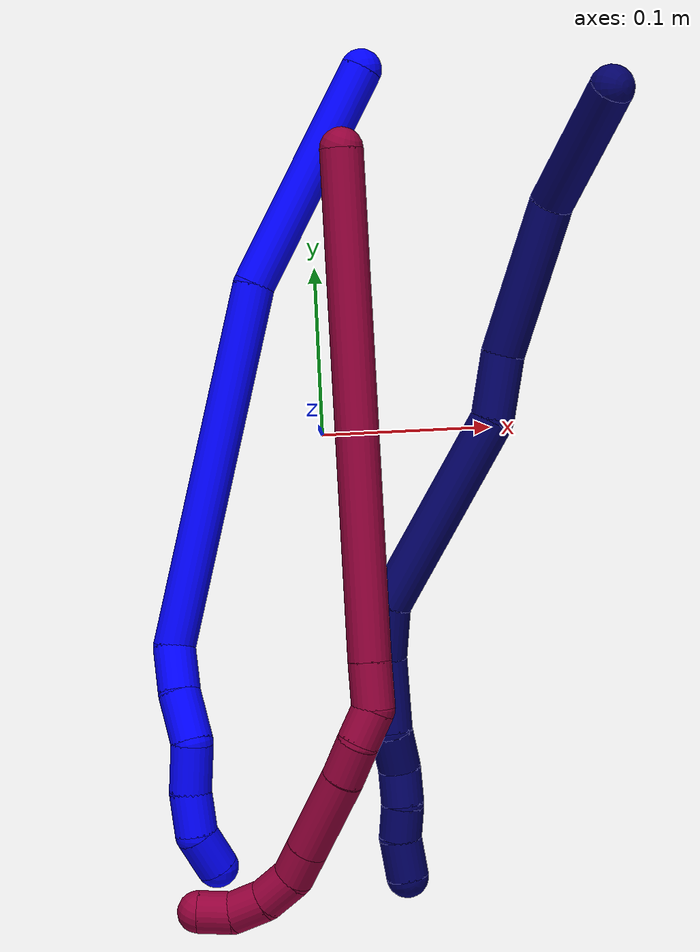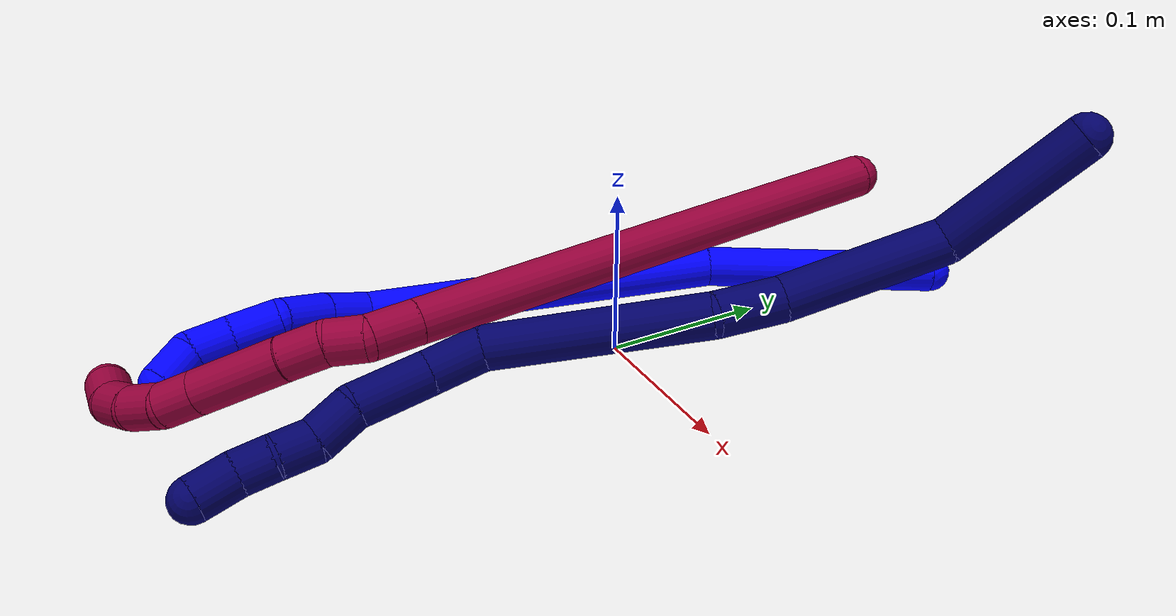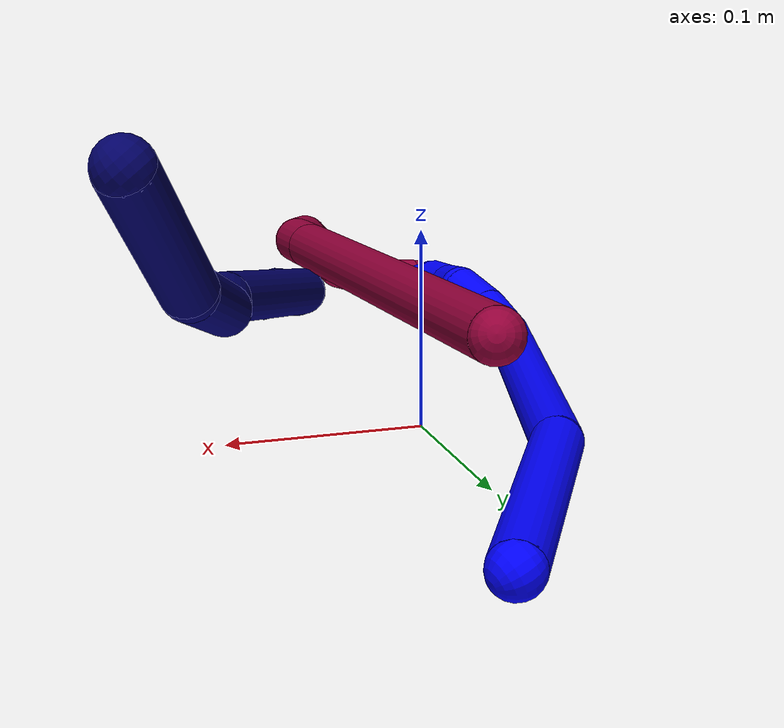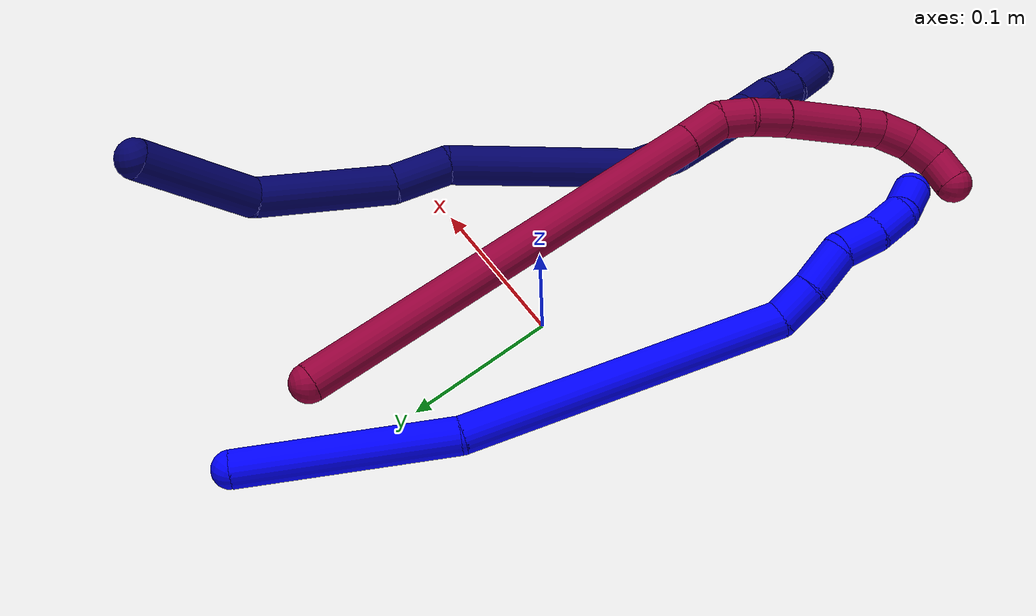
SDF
<sdf version="1.7">
 <world name="default">
  <model name="1">
   <static>0</static>
   <link name="1">
    <collision name="collision-cylinder-e_1_1_4">
     <pose>-0.031318 -0.049435 0.041776 0.869175 -0.450663 -0.212007</pose>
     <geometry><cylinder><radius>0.0125</radius><length>0.143803</length></cylinder></geometry>
     <surface>
      <friction><ode><mu>1.16</mu><mu2>1.16</mu2><slip1>0</slip1><slip2>0</slip2></ode></friction>
      <contact><ode><kp>1e+06</kp><kd>1</kd><max_vel>0</max_vel><min_depth>0.001</min_depth></ode></contact>
     </surface>
    </collision>
    <visual name="visual-cylinder-e_1_1_4">
     <pose>-0.031318 -0.049435 0.041776 0.869175 -0.450663 -0.212007</pose>
     <geometry><cylinder><radius>0.0125</radius><length>0.143803</length></cylinder></geometry>
     <material><ambient>0 0 1 1</ambient></material>
    </visual>
    <collision name="collision-cylinder-e_2_4_5">
     <pose>-0.109671 -0.188488 0.124646 1.14085 -0.445147 -0.288389</pose>
     <geometry><cylinder><radius>0.0125</radius><length>0.218472</length></cylinder></geometry>
     <surface>
      <friction><ode><mu>1.16</mu><mu2>1.16</mu2><slip1>0</slip1><slip2>0</slip2></ode></friction>
      <contact><ode><kp>1e+06</kp><kd>1</kd><max_vel>0</max_vel><min_depth>0.001</min_depth></ode></contact>
     </surface>
    </collision>
    <visual name="visual-cylinder-e_2_4_5">
     <pose>-0.109671 -0.188488 0.124646 1.14085 -0.445147 -0.288389</pose>
     <geometry><cylinder><radius>0.0125</radius><length>0.218472</length></cylinder></geometry>
     <material><ambient>0 0 1 1</ambient></material>
    </visual>
    <collision name="collision-cylinder-e_3_5_6">
     <pose>-0.157095 -0.29198 0.168436 1.37884 -0.027443 -0.022623</pose>
     <geometry><cylinder><radius>0.0125</radius><length>0.028279</length></cylinder></geometry>
     <surface>
      <friction><ode><mu>1.16</mu><mu2>1.16</mu2><slip1>0</slip1><slip2>0</slip2></ode></friction>
      <contact><ode><kp>1e+06</kp><kd>1</kd><max_vel>0</max_vel><min_depth>0.001</min_depth></ode></contact>
     </surface>
    </collision>
    <visual name="visual-cylinder-e_3_5_6">
     <pose>-0.157095 -0.29198 0.168436 1.37884 -0.027443 -0.022623</pose>
     <geometry><cylinder><radius>0.0125</radius><length>0.028279</length></cylinder></geometry>
     <material><ambient>0 0 1 1</ambient></material>
    </visual>
    <collision name="collision-cylinder-e_4_6_7">
     <pose>-0.157898 -0.321105 0.171953 1.5171 -0.027157 -0.025737</pose>
     <geometry><cylinder><radius>0.0125</radius><length>0.030557</length></cylinder></geometry>
     <surface>
      <friction><ode><mu>1.16</mu><mu2>1.16</mu2><slip1>0</slip1><slip2>0</slip2></ode></friction>
      <contact><ode><kp>1e+06</kp><kd>1</kd><max_vel>0</max_vel><min_depth>0.001</min_depth></ode></contact>
     </surface>
    </collision>
    <visual name="visual-cylinder-e_4_6_7">
     <pose>-0.157898 -0.321105 0.171953 1.5171 -0.027157 -0.025737</pose>
     <geometry><cylinder><radius>0.0125</radius><length>0.030557</length></cylinder></geometry>
     <material><ambient>0 0 1 1</ambient></material>
    </visual>
    <collision name="collision-cylinder-e_5_7_8">
     <pose>-0.165688 -0.348756 0.175247 1.3738 -0.528014 -0.436334</pose>
     <geometry><cylinder><radius>0.0125</radius><length>0.029277</length></cylinder></geometry>
     <surface>
      <friction><ode><mu>1.16</mu><mu2>1.16</mu2><slip1>0</slip1><slip2>0</slip2></ode></friction>
      <contact><ode><kp>1e+06</kp><kd>1</kd><max_vel>0</max_vel><min_depth>0.001</min_depth></ode></contact>
     </surface>
    </collision>
    <visual name="visual-cylinder-e_5_7_8">
     <pose>-0.165688 -0.348756 0.175247 1.3738 -0.528014 -0.436334</pose>
     <geometry><cylinder><radius>0.0125</radius><length>0.029277</length></cylinder></geometry>
     <material><ambient>0 0 1 1</ambient></material>
    </visual>
    <collision name="collision-cylinder-e_6_8_9">
     <pose>-0.177675 -0.372837 0.178239 1.52658 -0.37575 -0.35985</pose>
     <geometry><cylinder><radius>0.0125</radius><length>0.025137</length></cylinder></geometry>
     <surface>
      <friction><ode><mu>1.16</mu><mu2>1.16</mu2><slip1>0</slip1><slip2>0</slip2></ode></friction>
      <contact><ode><kp>1e+06</kp><kd>1</kd><max_vel>0</max_vel><min_depth>0.001</min_depth></ode></contact>
     </surface>
    </collision>
    <visual name="visual-cylinder-e_6_8_9">
     <pose>-0.177675 -0.372837 0.178239 1.52658 -0.37575 -0.35985</pose>
     <geometry><cylinder><radius>0.0125</radius><length>0.025137</length></cylinder></geometry>
     <material><ambient>0 0 1 1</ambient></material>
    </visual>
    <collision name="collision-cylinder-e_7_9_2">
     <pose>-0.187763 -0.394217 0.173686 2.05242 -0.463854 -0.743599</pose>
     <geometry><cylinder><radius>0.0125</radius><length>0.024476</length></cylinder></geometry>
     <surface>
      <friction><ode><mu>1.16</mu><mu2>1.16</mu2><slip1>0</slip1><slip2>0</slip2></ode></friction>
      <contact><ode><kp>1e+06</kp><kd>1</kd><max_vel>0</max_vel><min_depth>0.001</min_depth></ode></contact>
     </surface>
    </collision>
    <visual name="visual-cylinder-e_7_9_2">
     <pose>-0.187763 -0.394217 0.173686 2.05242 -0.463854 -0.743599</pose>
     <geometry><cylinder><radius>0.0125</radius><length>0.024476</length></cylinder></geometry>
     <material><ambient>0 0 1 1</ambient></material>
    </visual>
    <collision name="collision-sphere-2">
     <pose>-0.193238 -0.403917 0.168616 0 -0 0</pose>
     <geometry><sphere><radius>0.0125</radius></sphere></geometry>
     <surface>
      <friction><ode><mu>1.16</mu><mu2>1.16</mu2><slip1>0</slip1><slip2>0</slip2></ode></friction>
      <contact><ode><kp>1e+06</kp><kd>1</kd><max_vel>0</max_vel><min_depth>0.001</min_depth></ode></contact>
     </surface>
    </collision>
    <visual name="visual-sphere-2">
     <pose>-0.193238 -0.403917 0.168616 0 -0 0</pose>
     <geometry><sphere><radius>0.0125</radius></sphere></geometry>
     <material><ambient>0 0 1 1</ambient></material>
    </visual>
    <collision name="collision-sphere-9">
     <pose>-0.182287 -0.384517 0.178756 0 -0 0</pose>
     <geometry><sphere><radius>0.0125</radius></sphere></geometry>
     <surface>
      <friction><ode><mu>1.16</mu><mu2>1.16</mu2><slip1>0</slip1><slip2>0</slip2></ode></friction>
      <contact><ode><kp>1e+06</kp><kd>1</kd><max_vel>0</max_vel><min_depth>0.001</min_depth></ode></contact>
     </surface>
    </collision>
    <visual name="visual-sphere-9">
     <pose>-0.182287 -0.384517 0.178756 0 -0 0</pose>
     <geometry><sphere><radius>0.0125</radius></sphere></geometry>
     <material><ambient>0 0 1 1</ambient></material>
    </visual>
    <collision name="collision-sphere-4">
     <pose>-0.062635 -0.09887 0.083551 0 -0 0</pose>
     <geometry><sphere><radius>0.0125</radius></sphere></geometry>
     <surface>
      <friction><ode><mu>1.16</mu><mu2>1.16</mu2><slip1>0</slip1><slip2>0</slip2></ode></friction>
      <contact><ode><kp>1e+06</kp><kd>1</kd><max_vel>0</max_vel><min_depth>0.001</min_depth></ode></contact>
     </surface>
    </collision>
    <visual name="visual-sphere-4">
     <pose>-0.062635 -0.09887 0.083551 0 -0 0</pose>
     <geometry><sphere><radius>0.0125</radius></sphere></geometry>
     <material><ambient>0 0 1 1</ambient></material>
    </visual>
    <collision name="collision-sphere-1">
     <geometry><sphere><radius>0.0125</radius></sphere></geometry>
     <surface>
      <friction><ode><mu>1.16</mu><mu2>1.16</mu2><slip1>0</slip1><slip2>0</slip2></ode></friction>
      <contact><ode><kp>1e+06</kp><kd>1</kd><max_vel>0</max_vel><min_depth>0.001</min_depth></ode></contact>
     </surface>
    </collision>
    <visual name="visual-sphere-1">
     <geometry><sphere><radius>0.0125</radius></sphere></geometry>
     <material><ambient>0 0 1 1</ambient></material>
    </visual>
    <collision name="collision-sphere-8">
     <pose>-0.173063 -0.361157 0.177722 0 -0 0</pose>
     <geometry><sphere><radius>0.0125</radius></sphere></geometry>
     <surface>
      <friction><ode><mu>1.16</mu><mu2>1.16</mu2><slip1>0</slip1><slip2>0</slip2></ode></friction>
      <contact><ode><kp>1e+06</kp><kd>1</kd><max_vel>0</max_vel><min_depth>0.001</min_depth></ode></contact>
     </surface>
    </collision>
    <visual name="visual-sphere-8">
     <pose>-0.173063 -0.361157 0.177722 0 -0 0</pose>
     <geometry><sphere><radius>0.0125</radius></sphere></geometry>
     <material><ambient>0 0 1 1</ambient></material>
    </visual>
    <collision name="collision-sphere-5">
     <pose>-0.156707 -0.278105 0.16574 0 -0 0</pose>
     <geometry><sphere><radius>0.0125</radius></sphere></geometry>
     <surface>
      <friction><ode><mu>1.16</mu><mu2>1.16</mu2><slip1>0</slip1><slip2>0</slip2></ode></friction>
      <contact><ode><kp>1e+06</kp><kd>1</kd><max_vel>0</max_vel><min_depth>0.001</min_depth></ode></contact>
     </surface>
    </collision>
    <visual name="visual-sphere-5">
     <pose>-0.156707 -0.278105 0.16574 0 -0 0</pose>
     <geometry><sphere><radius>0.0125</radius></sphere></geometry>
     <material><ambient>0 0 1 1</ambient></material>
    </visual>
    <collision name="collision-sphere-6">
     <pose>-0.157483 -0.305854 0.171133 0 -0 0</pose>
     <geometry><sphere><radius>0.0125</radius></sphere></geometry>
     <surface>
      <friction><ode><mu>1.16</mu><mu2>1.16</mu2><slip1>0</slip1><slip2>0</slip2></ode></friction>
      <contact><ode><kp>1e+06</kp><kd>1</kd><max_vel>0</max_vel><min_depth>0.001</min_depth></ode></contact>
     </surface>
    </collision>
    <visual name="visual-sphere-6">
     <pose>-0.157483 -0.305854 0.171133 0 -0 0</pose>
     <geometry><sphere><radius>0.0125</radius></sphere></geometry>
     <material><ambient>0 0 1 1</ambient></material>
    </visual>
    <collision name="collision-sphere-7">
     <pose>-0.158312 -0.336356 0.172773 0 -0 0</pose>
     <geometry><sphere><radius>0.0125</radius></sphere></geometry>
     <surface>
      <friction><ode><mu>1.16</mu><mu2>1.16</mu2><slip1>0</slip1><slip2>0</slip2></ode></friction>
      <contact><ode><kp>1e+06</kp><kd>1</kd><max_vel>0</max_vel><min_depth>0.001</min_depth></ode></contact>
     </surface>
    </collision>
    <visual name="visual-sphere-7">
     <pose>-0.158312 -0.336356 0.172773 0 -0 0</pose>
     <geometry><sphere><radius>0.0125</radius></sphere></geometry>
     <material><ambient>0 0 1 1</ambient></material>
    </visual>
    <inertial>
     <pose>-0.103287 -0.191177 0.114238 0 -0 0</pose>
     <mass>0.5</mass>
     <inertia>
      <ixx>0.000703</ixx>
      <ixy>0</ixy>
      <ixz>0</ixz>
      <iyy>0.00032</iyy>
      <iyz>0</iyz>
      <izz>0.001412</izz>
     </inertia>
    </inertial>
   </link>
   <pose>0.03379 0.215487 0.0123 -0.536003 -1.06983 0.766493</pose>
  </model>
  <model name="7">
   <static>0</static>
   <link name="7">
    <collision name="collision-cylinder-e_1_1_4">
     <pose>1.9e-05 -0.031908 -0.027168 2.27614 0.000462 0.001</pose>
     <geometry><cylinder><radius>0.0125</radius><length>0.083814</length></cylinder></geometry>
     <surface>
      <friction><ode><mu>1.16</mu><mu2>1.16</mu2><slip1>0</slip1><slip2>0</slip2></ode></friction>
      <contact><ode><kp>1e+06</kp><kd>1</kd><max_vel>0</max_vel><min_depth>0.001</min_depth></ode></contact>
     </surface>
    </collision>
    <visual name="visual-cylinder-e_1_1_4">
     <pose>1.9e-05 -0.031908 -0.027168 2.27614 0.000462 0.001</pose>
     <geometry><cylinder><radius>0.0125</radius><length>0.083814</length></cylinder></geometry>
     <material><ambient>0.003922 0 0.403922 1</ambient></material>
    </visual>
    <collision name="collision-cylinder-e_2_4_5">
     <pose>-0.011054 -0.105542 -0.066819 1.86147 -0.249386 -0.33353</pose>
     <geometry><cylinder><radius>0.0125</radius><length>0.089889</length></cylinder></geometry>
     <surface>
      <friction><ode><mu>1.16</mu><mu2>1.16</mu2><slip1>0</slip1><slip2>0</slip2></ode></friction>
      <contact><ode><kp>1e+06</kp><kd>1</kd><max_vel>0</max_vel><min_depth>0.001</min_depth></ode></contact>
     </surface>
    </collision>
    <visual name="visual-cylinder-e_2_4_5">
     <pose>-0.011054 -0.105542 -0.066819 1.86147 -0.249386 -0.33353</pose>
     <geometry><cylinder><radius>0.0125</radius><length>0.089889</length></cylinder></geometry>
     <material><ambient>0.003922 0 0.403922 1</ambient></material>
    </visual>
    <collision name="collision-cylinder-e_3_5_6">
     <pose>-0.027632 -0.165244 -0.079534 1.58373 -0.296171 -0.299968</pose>
     <geometry><cylinder><radius>0.0125</radius><length>0.037589</length></cylinder></geometry>
     <surface>
      <friction><ode><mu>1.16</mu><mu2>1.16</mu2><slip1>0</slip1><slip2>0</slip2></ode></friction>
      <contact><ode><kp>1e+06</kp><kd>1</kd><max_vel>0</max_vel><min_depth>0.001</min_depth></ode></contact>
     </surface>
    </collision>
    <visual name="visual-cylinder-e_3_5_6">
     <pose>-0.027632 -0.165244 -0.079534 1.58373 -0.296171 -0.299968</pose>
     <geometry><cylinder><radius>0.0125</radius><length>0.037589</length></cylinder></geometry>
     <material><ambient>0.003922 0 0.403922 1</ambient></material>
    </visual>
    <collision name="collision-cylinder-e_4_6_7">
     <pose>-0.06069 -0.234395 -0.098921 1.92894 -0.467324 -0.661239</pose>
     <geometry><cylinder><radius>0.0125</radius><length>0.122411</length></cylinder></geometry>
     <surface>
      <friction><ode><mu>1.16</mu><mu2>1.16</mu2><slip1>0</slip1><slip2>0</slip2></ode></friction>
      <contact><ode><kp>1e+06</kp><kd>1</kd><max_vel>0</max_vel><min_depth>0.001</min_depth></ode></contact>
     </surface>
    </collision>
    <visual name="visual-cylinder-e_4_6_7">
     <pose>-0.06069 -0.234395 -0.098921 1.92894 -0.467324 -0.661239</pose>
     <geometry><cylinder><radius>0.0125</radius><length>0.122411</length></cylinder></geometry>
     <material><ambient>0.003922 0 0.403922 1</ambient></material>
    </visual>
    <collision name="collision-cylinder-e_5_7_8">
     <pose>-0.090064 -0.301206 -0.119729 1.67616 -0.114049 -0.126714</pose>
     <geometry><cylinder><radius>0.0125</radius><length>0.031652</length></cylinder></geometry>
     <surface>
      <friction><ode><mu>1.16</mu><mu2>1.16</mu2><slip1>0</slip1><slip2>0</slip2></ode></friction>
      <contact><ode><kp>1e+06</kp><kd>1</kd><max_vel>0</max_vel><min_depth>0.001</min_depth></ode></contact>
     </surface>
    </collision>
    <visual name="visual-cylinder-e_5_7_8">
     <pose>-0.090064 -0.301206 -0.119729 1.67616 -0.114049 -0.126714</pose>
     <geometry><cylinder><radius>0.0125</radius><length>0.031652</length></cylinder></geometry>
     <material><ambient>0.003922 0 0.403922 1</ambient></material>
    </visual>
    <collision name="collision-cylinder-e_6_8_9">
     <pose>-0.093434 -0.338238 -0.119595 1.48745 -0.072914 -0.067082</pose>
     <geometry><cylinder><radius>0.0125</radius><length>0.043056</length></cylinder></geometry>
     <surface>
      <friction><ode><mu>1.16</mu><mu2>1.16</mu2><slip1>0</slip1><slip2>0</slip2></ode></friction>
      <contact><ode><kp>1e+06</kp><kd>1</kd><max_vel>0</max_vel><min_depth>0.001</min_depth></ode></contact>
     </surface>
    </collision>
    <visual name="visual-cylinder-e_6_8_9">
     <pose>-0.093434 -0.338238 -0.119595 1.48745 -0.072914 -0.067082</pose>
     <geometry><cylinder><radius>0.0125</radius><length>0.043056</length></cylinder></geometry>
     <material><ambient>0.003922 0 0.403922 1</ambient></material>
    </visual>
    <collision name="collision-cylinder-e_7_9_10">
     <pose>-0.092403 -0.372048 -0.118754 1.64687 0.2058 0.221954</pose>
     <geometry><cylinder><radius>0.0125</radius><length>0.025436</length></cylinder></geometry>
     <surface>
      <friction><ode><mu>1.16</mu><mu2>1.16</mu2><slip1>0</slip1><slip2>0</slip2></ode></friction>
      <contact><ode><kp>1e+06</kp><kd>1</kd><max_vel>0</max_vel><min_depth>0.001</min_depth></ode></contact>
     </surface>
    </collision>
    <visual name="visual-cylinder-e_7_9_10">
     <pose>-0.092403 -0.372048 -0.118754 1.64687 0.2058 0.221954</pose>
     <geometry><cylinder><radius>0.0125</radius><length>0.025436</length></cylinder></geometry>
     <material><ambient>0.003922 0 0.403922 1</ambient></material>
    </visual>
    <collision name="collision-cylinder-e_8_10_11">
     <pose>-0.090835 -0.395095 -0.118267 1.43688 -0.095764 -0.083742</pose>
     <geometry><cylinder><radius>0.0125</radius><length>0.021558</length></cylinder></geometry>
     <surface>
      <friction><ode><mu>1.16</mu><mu2>1.16</mu2><slip1>0</slip1><slip2>0</slip2></ode></friction>
      <contact><ode><kp>1e+06</kp><kd>1</kd><max_vel>0</max_vel><min_depth>0.001</min_depth></ode></contact>
     </surface>
    </collision>
    <visual name="visual-cylinder-e_8_10_11">
     <pose>-0.090835 -0.395095 -0.118267 1.43688 -0.095764 -0.083742</pose>
     <geometry><cylinder><radius>0.0125</radius><length>0.021558</length></cylinder></geometry>
     <material><ambient>0.003922 0 0.403922 1</ambient></material>
    </visual>
    <collision name="collision-cylinder-e_9_11_12">
     <pose>-0.0932 -0.415719 -0.117606 1.64786 -0.132451 -0.143038</pose>
     <geometry><cylinder><radius>0.0125</radius><length>0.020218</length></cylinder></geometry>
     <surface>
      <friction><ode><mu>1.16</mu><mu2>1.16</mu2><slip1>0</slip1><slip2>0</slip2></ode></friction>
      <contact><ode><kp>1e+06</kp><kd>1</kd><max_vel>0</max_vel><min_depth>0.001</min_depth></ode></contact>
     </surface>
    </collision>
    <visual name="visual-cylinder-e_9_11_12">
     <pose>-0.0932 -0.415719 -0.117606 1.64786 -0.132451 -0.143038</pose>
     <geometry><cylinder><radius>0.0125</radius><length>0.020218</length></cylinder></geometry>
     <material><ambient>0.003922 0 0.403922 1</ambient></material>
    </visual>
    <collision name="collision-cylinder-e_10_12_2">
     <pose>-0.09401 -0.437828 -0.117184 1.47266 0.043146 0.039108</pose>
     <geometry><cylinder><radius>0.0125</radius><length>0.024378</length></cylinder></geometry>
     <surface>
      <friction><ode><mu>1.16</mu><mu2>1.16</mu2><slip1>0</slip1><slip2>0</slip2></ode></friction>
      <contact><ode><kp>1e+06</kp><kd>1</kd><max_vel>0</max_vel><min_depth>0.001</min_depth></ode></contact>
     </surface>
    </collision>
    <visual name="visual-cylinder-e_10_12_2">
     <pose>-0.09401 -0.437828 -0.117184 1.47266 0.043146 0.039108</pose>
     <geometry><cylinder><radius>0.0125</radius><length>0.024378</length></cylinder></geometry>
     <material><ambient>0.003922 0 0.403922 1</ambient></material>
    </visual>
    <collision name="collision-sphere-2">
     <pose>-0.093484 -0.449947 -0.115991 0 -0 0</pose>
     <geometry><sphere><radius>0.0125</radius></sphere></geometry>
     <surface>
      <friction><ode><mu>1.16</mu><mu2>1.16</mu2><slip1>0</slip1><slip2>0</slip2></ode></friction>
      <contact><ode><kp>1e+06</kp><kd>1</kd><max_vel>0</max_vel><min_depth>0.001</min_depth></ode></contact>
     </surface>
    </collision>
    <visual name="visual-sphere-2">
     <pose>-0.093484 -0.449947 -0.115991 0 -0 0</pose>
     <geometry><sphere><radius>0.0125</radius></sphere></geometry>
     <material><ambient>0.003922 0 0.403922 1</ambient></material>
    </visual>
    <collision name="collision-sphere-12">
     <pose>-0.094535 -0.425709 -0.118377 0 -0 0</pose>
     <geometry><sphere><radius>0.0125</radius></sphere></geometry>
     <surface>
      <friction><ode><mu>1.16</mu><mu2>1.16</mu2><slip1>0</slip1><slip2>0</slip2></ode></friction>
      <contact><ode><kp>1e+06</kp><kd>1</kd><max_vel>0</max_vel><min_depth>0.001</min_depth></ode></contact>
     </surface>
    </collision>
    <visual name="visual-sphere-12">
     <pose>-0.094535 -0.425709 -0.118377 0 -0 0</pose>
     <geometry><sphere><radius>0.0125</radius></sphere></geometry>
     <material><ambient>0.003922 0 0.403922 1</ambient></material>
    </visual>
    <collision name="collision-sphere-11">
     <pose>-0.091865 -0.405728 -0.116835 0 -0 0</pose>
     <geometry><sphere><radius>0.0125</radius></sphere></geometry>
     <surface>
      <friction><ode><mu>1.16</mu><mu2>1.16</mu2><slip1>0</slip1><slip2>0</slip2></ode></friction>
      <contact><ode><kp>1e+06</kp><kd>1</kd><max_vel>0</max_vel><min_depth>0.001</min_depth></ode></contact>
     </surface>
    </collision>
    <visual name="visual-sphere-11">
     <pose>-0.091865 -0.405728 -0.116835 0 -0 0</pose>
     <geometry><sphere><radius>0.0125</radius></sphere></geometry>
     <material><ambient>0.003922 0 0.403922 1</ambient></material>
    </visual>
    <collision name="collision-sphere-10">
     <pose>-0.089804 -0.384461 -0.1197 0 -0 0</pose>
     <geometry><sphere><radius>0.0125</radius></sphere></geometry>
     <surface>
      <friction><ode><mu>1.16</mu><mu2>1.16</mu2><slip1>0</slip1><slip2>0</slip2></ode></friction>
      <contact><ode><kp>1e+06</kp><kd>1</kd><max_vel>0</max_vel><min_depth>0.001</min_depth></ode></contact>
     </surface>
    </collision>
    <visual name="visual-sphere-10">
     <pose>-0.089804 -0.384461 -0.1197 0 -0 0</pose>
     <geometry><sphere><radius>0.0125</radius></sphere></geometry>
     <material><ambient>0.003922 0 0.403922 1</ambient></material>
    </visual>
    <collision name="collision-sphere-9">
     <pose>-0.095002 -0.359634 -0.117807 0 -0 0</pose>
     <geometry><sphere><radius>0.0125</radius></sphere></geometry>
     <surface>
      <friction><ode><mu>1.16</mu><mu2>1.16</mu2><slip1>0</slip1><slip2>0</slip2></ode></friction>
      <contact><ode><kp>1e+06</kp><kd>1</kd><max_vel>0</max_vel><min_depth>0.001</min_depth></ode></contact>
     </surface>
    </collision>
    <visual name="visual-sphere-9">
     <pose>-0.095002 -0.359634 -0.117807 0 -0 0</pose>
     <geometry><sphere><radius>0.0125</radius></sphere></geometry>
     <material><ambient>0.003922 0 0.403922 1</ambient></material>
    </visual>
    <collision name="collision-sphere-4">
     <pose>3.9e-05 -0.063815 -0.054337 0 -0 0</pose>
     <geometry><sphere><radius>0.0125</radius></sphere></geometry>
     <surface>
      <friction><ode><mu>1.16</mu><mu2>1.16</mu2><slip1>0</slip1><slip2>0</slip2></ode></friction>
      <contact><ode><kp>1e+06</kp><kd>1</kd><max_vel>0</max_vel><min_depth>0.001</min_depth></ode></contact>
     </surface>
    </collision>
    <visual name="visual-sphere-4">
     <pose>3.9e-05 -0.063815 -0.054337 0 -0 0</pose>
     <geometry><sphere><radius>0.0125</radius></sphere></geometry>
     <material><ambient>0.003922 0 0.403922 1</ambient></material>
    </visual>
    <collision name="collision-sphere-1">
     <geometry><sphere><radius>0.0125</radius></sphere></geometry>
     <surface>
      <friction><ode><mu>1.16</mu><mu2>1.16</mu2><slip1>0</slip1><slip2>0</slip2></ode></friction>
      <contact><ode><kp>1e+06</kp><kd>1</kd><max_vel>0</max_vel><min_depth>0.001</min_depth></ode></contact>
     </surface>
    </collision>
    <visual name="visual-sphere-1">
     <geometry><sphere><radius>0.0125</radius></sphere></geometry>
     <material><ambient>0.003922 0 0.403922 1</ambient></material>
    </visual>
    <collision name="collision-sphere-8">
     <pose>-0.091865 -0.316842 -0.121382 0 -0 0</pose>
     <geometry><sphere><radius>0.0125</radius></sphere></geometry>
     <surface>
      <friction><ode><mu>1.16</mu><mu2>1.16</mu2><slip1>0</slip1><slip2>0</slip2></ode></friction>
      <contact><ode><kp>1e+06</kp><kd>1</kd><max_vel>0</max_vel><min_depth>0.001</min_depth></ode></contact>
     </surface>
    </collision>
    <visual name="visual-sphere-8">
     <pose>-0.091865 -0.316842 -0.121382 0 -0 0</pose>
     <geometry><sphere><radius>0.0125</radius></sphere></geometry>
     <material><ambient>0.003922 0 0.403922 1</ambient></material>
    </visual>
    <collision name="collision-sphere-5">
     <pose>-0.022147 -0.147269 -0.079302 0 -0 0</pose>
     <geometry><sphere><radius>0.0125</radius></sphere></geometry>
     <surface>
      <friction><ode><mu>1.16</mu><mu2>1.16</mu2><slip1>0</slip1><slip2>0</slip2></ode></friction>
      <contact><ode><kp>1e+06</kp><kd>1</kd><max_vel>0</max_vel><min_depth>0.001</min_depth></ode></contact>
     </surface>
    </collision>
    <visual name="visual-sphere-5">
     <pose>-0.022147 -0.147269 -0.079302 0 -0 0</pose>
     <geometry><sphere><radius>0.0125</radius></sphere></geometry>
     <material><ambient>0.003922 0 0.403922 1</ambient></material>
    </visual>
    <collision name="collision-sphere-6">
     <pose>-0.033118 -0.183219 -0.079767 0 -0 0</pose>
     <geometry><sphere><radius>0.0125</radius></sphere></geometry>
     <surface>
      <friction><ode><mu>1.16</mu><mu2>1.16</mu2><slip1>0</slip1><slip2>0</slip2></ode></friction>
      <contact><ode><kp>1e+06</kp><kd>1</kd><max_vel>0</max_vel><min_depth>0.001</min_depth></ode></contact>
     </surface>
    </collision>
    <visual name="visual-sphere-6">
     <pose>-0.033118 -0.183219 -0.079767 0 -0 0</pose>
     <geometry><sphere><radius>0.0125</radius></sphere></geometry>
     <material><ambient>0.003922 0 0.403922 1</ambient></material>
    </visual>
    <collision name="collision-sphere-7">
     <pose>-0.088263 -0.28557 -0.118075 0 -0 0</pose>
     <geometry><sphere><radius>0.0125</radius></sphere></geometry>
     <surface>
      <friction><ode><mu>1.16</mu><mu2>1.16</mu2><slip1>0</slip1><slip2>0</slip2></ode></friction>
      <contact><ode><kp>1e+06</kp><kd>1</kd><max_vel>0</max_vel><min_depth>0.001</min_depth></ode></contact>
     </surface>
    </collision>
    <visual name="visual-sphere-7">
     <pose>-0.088263 -0.28557 -0.118075 0 -0 0</pose>
     <geometry><sphere><radius>0.0125</radius></sphere></geometry>
     <material><ambient>0.003922 0 0.403922 1</ambient></material>
    </visual>
    <inertial>
     <pose>-0.049636 -0.216442 -0.086251 0 -0 0</pose>
     <mass>0.5</mass>
     <inertia>
      <ixx>0.000131</ixx>
      <ixy>0</ixy>
      <ixz>0</ixz>
      <iyy>-0.000192</iyy>
      <iyz>0</iyz>
      <izz>0.000337</izz>
     </inertia>
    </inertial>
   </link>
   <pose>0.166319 0.168299 0.162728 0.322965 0.622815 0.229112</pose>
  </model>
  <model name="8">
   <static>0</static>
   <link name="8">
    <collision name="collision-cylinder-e_1_1_4">
     <pose>-0.046513 -0.036915 0.132075 0.272544 -0.326994 -0.045234</pose>
     <geometry><cylinder><radius>0.0125</radius><length>0.28962</length></cylinder></geometry>
     <surface>
      <friction><ode><mu>1.16</mu><mu2>1.16</mu2><slip1>0</slip1><slip2>0</slip2></ode></friction>
      <contact><ode><kp>1e+06</kp><kd>1</kd><max_vel>0</max_vel><min_depth>0.001</min_depth></ode></contact>
     </surface>
    </collision>
    <visual name="visual-cylinder-e_1_1_4">
     <pose>-0.046513 -0.036915 0.132075 0.272544 -0.326994 -0.045234</pose>
     <geometry><cylinder><radius>0.0125</radius><length>0.28962</length></cylinder></geometry>
     <material><ambient>0.584314 0 0.227451 1</ambient></material>
    </visual>
    <collision name="collision-cylinder-e_2_4_5">
     <pose>-0.097702 -0.077482 0.27647 0.288224 -0.34901 -0.051157</pose>
     <geometry><cylinder><radius>0.0125</radius><length>0.02735</length></cylinder></geometry>
     <surface>
      <friction><ode><mu>1.16</mu><mu2>1.16</mu2><slip1>0</slip1><slip2>0</slip2></ode></friction>
      <contact><ode><kp>1e+06</kp><kd>1</kd><max_vel>0</max_vel><min_depth>0.001</min_depth></ode></contact>
     </surface>
    </collision>
    <visual name="visual-cylinder-e_2_4_5">
     <pose>-0.097702 -0.077482 0.27647 0.288224 -0.34901 -0.051157</pose>
     <geometry><cylinder><radius>0.0125</radius><length>0.02735</length></cylinder></geometry>
     <material><ambient>0.584314 0 0.227451 1</ambient></material>
    </visual>
    <collision name="collision-cylinder-e_3_5_6">
     <pose>-0.100866 -0.082989 0.299039 0.178894 0.144151 0.012951</pose>
     <geometry><cylinder><radius>0.0125</radius><length>0.021048</length></cylinder></geometry>
     <surface>
      <friction><ode><mu>1.16</mu><mu2>1.16</mu2><slip1>0</slip1><slip2>0</slip2></ode></friction>
      <contact><ode><kp>1e+06</kp><kd>1</kd><max_vel>0</max_vel><min_depth>0.001</min_depth></ode></contact>
     </surface>
    </collision>
    <visual name="visual-cylinder-e_3_5_6">
     <pose>-0.100866 -0.082989 0.299039 0.178894 0.144151 0.012951</pose>
     <geometry><cylinder><radius>0.0125</radius><length>0.021048</length></cylinder></geometry>
     <material><ambient>0.584314 0 0.227451 1</ambient></material>
    </visual>
    <collision name="collision-cylinder-e_4_6_7">
     <pose>-0.098327 -0.083892 0.321481 -0.077718 0.083813 -0.00326</pose>
     <geometry><cylinder><radius>0.0125</radius><length>0.024547</length></cylinder></geometry>
     <surface>
      <friction><ode><mu>1.16</mu><mu2>1.16</mu2><slip1>0</slip1><slip2>0</slip2></ode></friction>
      <contact><ode><kp>1e+06</kp><kd>1</kd><max_vel>0</max_vel><min_depth>0.001</min_depth></ode></contact>
     </surface>
    </collision>
    <visual name="visual-cylinder-e_4_6_7">
     <pose>-0.098327 -0.083892 0.321481 -0.077718 0.083813 -0.00326</pose>
     <geometry><cylinder><radius>0.0125</radius><length>0.024547</length></cylinder></geometry>
     <material><ambient>0.584314 0 0.227451 1</ambient></material>
    </visual>
    <collision name="collision-cylinder-e_5_7_8">
     <pose>-0.093988 -0.079534 0.358834 -0.134644 0.129686 -0.008756</pose>
     <geometry><cylinder><radius>0.0125</radius><length>0.051208</length></cylinder></geometry>
     <surface>
      <friction><ode><mu>1.16</mu><mu2>1.16</mu2><slip1>0</slip1><slip2>0</slip2></ode></friction>
      <contact><ode><kp>1e+06</kp><kd>1</kd><max_vel>0</max_vel><min_depth>0.001</min_depth></ode></contact>
     </surface>
    </collision>
    <visual name="visual-cylinder-e_5_7_8">
     <pose>-0.093988 -0.079534 0.358834 -0.134644 0.129686 -0.008756</pose>
     <geometry><cylinder><radius>0.0125</radius><length>0.051208</length></cylinder></geometry>
     <material><ambient>0.584314 0 0.227451 1</ambient></material>
    </visual>
    <collision name="collision-cylinder-e_6_8_9">
     <pose>-0.089312 -0.074755 0.394392 -0.131084 0.129473 -0.00851</pose>
     <geometry><cylinder><radius>0.0125</radius><length>0.021155</length></cylinder></geometry>
     <surface>
      <friction><ode><mu>1.16</mu><mu2>1.16</mu2><slip1>0</slip1><slip2>0</slip2></ode></friction>
      <contact><ode><kp>1e+06</kp><kd>1</kd><max_vel>0</max_vel><min_depth>0.001</min_depth></ode></contact>
     </surface>
    </collision>
    <visual name="visual-cylinder-e_6_8_9">
     <pose>-0.089312 -0.074755 0.394392 -0.131084 0.129473 -0.00851</pose>
     <geometry><cylinder><radius>0.0125</radius><length>0.021155</length></cylinder></geometry>
     <material><ambient>0.584314 0 0.227451 1</ambient></material>
    </visual>
    <collision name="collision-cylinder-e_7_9_10">
     <pose>-0.082388 -0.071976 0.414658 -0.141781 0.508717 -0.036919</pose>
     <geometry><cylinder><radius>0.0125</radius><length>0.022824</length></cylinder></geometry>
     <surface>
      <friction><ode><mu>1.16</mu><mu2>1.16</mu2><slip1>0</slip1><slip2>0</slip2></ode></friction>
      <contact><ode><kp>1e+06</kp><kd>1</kd><max_vel>0</max_vel><min_depth>0.001</min_depth></ode></contact>
     </surface>
    </collision>
    <visual name="visual-cylinder-e_7_9_10">
     <pose>-0.082388 -0.071976 0.414658 -0.141781 0.508717 -0.036919</pose>
     <geometry><cylinder><radius>0.0125</radius><length>0.022824</length></cylinder></geometry>
     <material><ambient>0.584314 0 0.227451 1</ambient></material>
    </visual>
    <collision name="collision-cylinder-e_8_10_11">
     <pose>-0.068997 -0.068864 0.431995 -0.224238 0.796357 -0.094652</pose>
     <geometry><cylinder><radius>0.0125</radius><length>0.021915</length></cylinder></geometry>
     <surface>
      <friction><ode><mu>1.16</mu><mu2>1.16</mu2><slip1>0</slip1><slip2>0</slip2></ode></friction>
      <contact><ode><kp>1e+06</kp><kd>1</kd><max_vel>0</max_vel><min_depth>0.001</min_depth></ode></contact>
     </surface>
    </collision>
    <visual name="visual-cylinder-e_8_10_11">
     <pose>-0.068997 -0.068864 0.431995 -0.224238 0.796357 -0.094652</pose>
     <geometry><cylinder><radius>0.0125</radius><length>0.021915</length></cylinder></geometry>
     <material><ambient>0.584314 0 0.227451 1</ambient></material>
    </visual>
    <collision name="collision-cylinder-e_9_11_2">
     <pose>-0.051422 -0.066325 0.442253 -0.291147 1.28062 -0.217596</pose>
     <geometry><cylinder><radius>0.0125</radius><length>0.020334</length></cylinder></geometry>
     <surface>
      <friction><ode><mu>1.16</mu><mu2>1.16</mu2><slip1>0</slip1><slip2>0</slip2></ode></friction>
      <contact><ode><kp>1e+06</kp><kd>1</kd><max_vel>0</max_vel><min_depth>0.001</min_depth></ode></contact>
     </surface>
    </collision>
    <visual name="visual-cylinder-e_9_11_2">
     <pose>-0.051422 -0.066325 0.442253 -0.291147 1.28062 -0.217596</pose>
     <geometry><cylinder><radius>0.0125</radius><length>0.020334</length></cylinder></geometry>
     <material><ambient>0.584314 0 0.227451 1</ambient></material>
    </visual>
    <collision name="collision-sphere-2">
     <pose>-0.04168 -0.06549 0.445039 0 -0 0</pose>
     <geometry><sphere><radius>0.0125</radius></sphere></geometry>
     <surface>
      <friction><ode><mu>1.16</mu><mu2>1.16</mu2><slip1>0</slip1><slip2>0</slip2></ode></friction>
      <contact><ode><kp>1e+06</kp><kd>1</kd><max_vel>0</max_vel><min_depth>0.001</min_depth></ode></contact>
     </surface>
    </collision>
    <visual name="visual-sphere-2">
     <pose>-0.04168 -0.06549 0.445039 0 -0 0</pose>
     <geometry><sphere><radius>0.0125</radius></sphere></geometry>
     <material><ambient>0.584314 0 0.227451 1</ambient></material>
    </visual>
    <collision name="collision-sphere-11">
     <pose>-0.061164 -0.06716 0.439466 0 -0 0</pose>
     <geometry><sphere><radius>0.0125</radius></sphere></geometry>
     <surface>
      <friction><ode><mu>1.16</mu><mu2>1.16</mu2><slip1>0</slip1><slip2>0</slip2></ode></friction>
      <contact><ode><kp>1e+06</kp><kd>1</kd><max_vel>0</max_vel><min_depth>0.001</min_depth></ode></contact>
     </surface>
    </collision>
    <visual name="visual-sphere-11">
     <pose>-0.061164 -0.06716 0.439466 0 -0 0</pose>
     <geometry><sphere><radius>0.0125</radius></sphere></geometry>
     <material><ambient>0.584314 0 0.227451 1</ambient></material>
    </visual>
    <collision name="collision-sphere-10">
     <pose>-0.076829 -0.070568 0.424524 0 -0 0</pose>
     <geometry><sphere><radius>0.0125</radius></sphere></geometry>
     <surface>
      <friction><ode><mu>1.16</mu><mu2>1.16</mu2><slip1>0</slip1><slip2>0</slip2></ode></friction>
      <contact><ode><kp>1e+06</kp><kd>1</kd><max_vel>0</max_vel><min_depth>0.001</min_depth></ode></contact>
     </surface>
    </collision>
    <visual name="visual-sphere-10">
     <pose>-0.076829 -0.070568 0.424524 0 -0 0</pose>
     <geometry><sphere><radius>0.0125</radius></sphere></geometry>
     <material><ambient>0.584314 0 0.227451 1</ambient></material>
    </visual>
    <collision name="collision-sphere-9">
     <pose>-0.087946 -0.073384 0.404791 0 -0 0</pose>
     <geometry><sphere><radius>0.0125</radius></sphere></geometry>
     <surface>
      <friction><ode><mu>1.16</mu><mu2>1.16</mu2><slip1>0</slip1><slip2>0</slip2></ode></friction>
      <contact><ode><kp>1e+06</kp><kd>1</kd><max_vel>0</max_vel><min_depth>0.001</min_depth></ode></contact>
     </surface>
    </collision>
    <visual name="visual-sphere-9">
     <pose>-0.087946 -0.073384 0.404791 0 -0 0</pose>
     <geometry><sphere><radius>0.0125</radius></sphere></geometry>
     <material><ambient>0.584314 0 0.227451 1</ambient></material>
    </visual>
    <collision name="collision-sphere-4">
     <pose>-0.093025 -0.07383 0.26415 0 -0 0</pose>
     <geometry><sphere><radius>0.0125</radius></sphere></geometry>
     <surface>
      <friction><ode><mu>1.16</mu><mu2>1.16</mu2><slip1>0</slip1><slip2>0</slip2></ode></friction>
      <contact><ode><kp>1e+06</kp><kd>1</kd><max_vel>0</max_vel><min_depth>0.001</min_depth></ode></contact>
     </surface>
    </collision>
    <visual name="visual-sphere-4">
     <pose>-0.093025 -0.07383 0.26415 0 -0 0</pose>
     <geometry><sphere><radius>0.0125</radius></sphere></geometry>
     <material><ambient>0.584314 0 0.227451 1</ambient></material>
    </visual>
    <collision name="collision-sphere-1">
     <geometry><sphere><radius>0.0125</radius></sphere></geometry>
     <surface>
      <friction><ode><mu>1.16</mu><mu2>1.16</mu2><slip1>0</slip1><slip2>0</slip2></ode></friction>
      <contact><ode><kp>1e+06</kp><kd>1</kd><max_vel>0</max_vel><min_depth>0.001</min_depth></ode></contact>
     </surface>
    </collision>
    <visual name="visual-sphere-1">
     <geometry><sphere><radius>0.0125</radius></sphere></geometry>
     <material><ambient>0.584314 0 0.227451 1</ambient></material>
    </visual>
    <collision name="collision-sphere-8">
     <pose>-0.090677 -0.076126 0.383993 0 -0 0</pose>
     <geometry><sphere><radius>0.0125</radius></sphere></geometry>
     <surface>
      <friction><ode><mu>1.16</mu><mu2>1.16</mu2><slip1>0</slip1><slip2>0</slip2></ode></friction>
      <contact><ode><kp>1e+06</kp><kd>1</kd><max_vel>0</max_vel><min_depth>0.001</min_depth></ode></contact>
     </surface>
    </collision>
    <visual name="visual-sphere-8">
     <pose>-0.090677 -0.076126 0.383993 0 -0 0</pose>
     <geometry><sphere><radius>0.0125</radius></sphere></geometry>
     <material><ambient>0.584314 0 0.227451 1</ambient></material>
    </visual>
    <collision name="collision-sphere-5">
     <pose>-0.102378 -0.081135 0.288791 0 -0 0</pose>
     <geometry><sphere><radius>0.0125</radius></sphere></geometry>
     <surface>
      <friction><ode><mu>1.16</mu><mu2>1.16</mu2><slip1>0</slip1><slip2>0</slip2></ode></friction>
      <contact><ode><kp>1e+06</kp><kd>1</kd><max_vel>0</max_vel><min_depth>0.001</min_depth></ode></contact>
     </surface>
    </collision>
    <visual name="visual-sphere-5">
     <pose>-0.102378 -0.081135 0.288791 0 -0 0</pose>
     <geometry><sphere><radius>0.0125</radius></sphere></geometry>
     <material><ambient>0.584314 0 0.227451 1</ambient></material>
    </visual>
    <collision name="collision-sphere-6">
     <pose>-0.099355 -0.084842 0.309288 0 -0 0</pose>
     <geometry><sphere><radius>0.0125</radius></sphere></geometry>
     <surface>
      <friction><ode><mu>1.16</mu><mu2>1.16</mu2><slip1>0</slip1><slip2>0</slip2></ode></friction>
      <contact><ode><kp>1e+06</kp><kd>1</kd><max_vel>0</max_vel><min_depth>0.001</min_depth></ode></contact>
     </surface>
    </collision>
    <visual name="visual-sphere-6">
     <pose>-0.099355 -0.084842 0.309288 0 -0 0</pose>
     <geometry><sphere><radius>0.0125</radius></sphere></geometry>
     <material><ambient>0.584314 0 0.227451 1</ambient></material>
    </visual>
    <collision name="collision-sphere-7">
     <pose>-0.0973 -0.082943 0.333674 0 -0 0</pose>
     <geometry><sphere><radius>0.0125</radius></sphere></geometry>
     <surface>
      <friction><ode><mu>1.16</mu><mu2>1.16</mu2><slip1>0</slip1><slip2>0</slip2></ode></friction>
      <contact><ode><kp>1e+06</kp><kd>1</kd><max_vel>0</max_vel><min_depth>0.001</min_depth></ode></contact>
     </surface>
    </collision>
    <visual name="visual-sphere-7">
     <pose>-0.0973 -0.082943 0.333674 0 -0 0</pose>
     <geometry><sphere><radius>0.0125</radius></sphere></geometry>
     <material><ambient>0.584314 0 0.227451 1</ambient></material>
    </visual>
    <inertial>
     <pose>-0.06364 -0.053542 0.229282 0 -0 0</pose>
     <mass>0.5</mass>
     <inertia><ixx>0.001859</ixx><ixy>0</ixy><ixz>0</ixz><iyy>0.0019</iyy><iyz>0</iyz><izz>0.001201</izz></inertia>
    </inertial>
   </link>
   <pose>0.020163 0.155833 0.086923 -1.87612 -0.108925 2.82461</pose>
  </model>
 </world>
</sdf>
